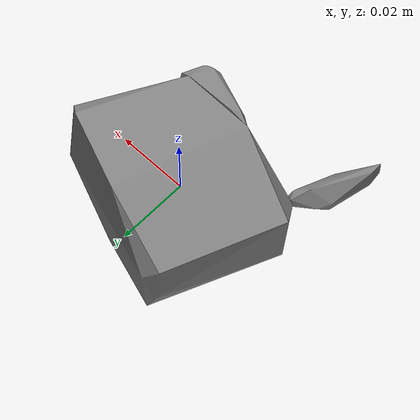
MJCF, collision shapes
<mujoco model="padlock">
  <compiler angle="radian" />

  <asset>
    <mesh name="padlock_visual_mesh" file="padlock/textured.obj" />
    <mesh name="padlock_collision_mesh_0" file="padlock/textured_coacd_0.stl" />
    <mesh name="padlock_collision_mesh_1" file="padlock/textured_coacd_1.stl" />
    <mesh name="padlock_collision_mesh_2" file="padlock/textured_coacd_2.stl" />
    <mesh name="padlock_collision_mesh_3" file="padlock/textured_coacd_3.stl" />
    <texture name="padlock_texture" type="2d" file="padlock/texture_map.png" />
    <material name="padlock_material" texture="padlock_texture" />
  </asset>

  <worldbody>
    <body name="padlock" pos="0 0 0" euler="0 0 0">
      <freejoint name="padlock_joint" />
      <geom name="padlock_visual_geom" type="mesh" mesh="padlock_visual_mesh" material="padlock_material" pos="0.01707606691752894 -0.00951738900221132 -0.013626341524550546" euler="0 0 0" contype="0" conaffinity="0" group="0" />
      <geom name="padlock_collision_geom_0" type="mesh" mesh="padlock_collision_mesh_0" pos="0.01707606691752894 -0.00951738900221132 -0.013626341524550546" euler="0 0 0" contype="1" conaffinity="1" group="3" />
      <geom name="padlock_collision_geom_1" type="mesh" mesh="padlock_collision_mesh_1" pos="0.01707606691752894 -0.00951738900221132 -0.013626341524550546" euler="0 0 0" contype="1" conaffinity="1" group="3" />
      <geom name="padlock_collision_geom_2" type="mesh" mesh="padlock_collision_mesh_2" pos="0.01707606691752894 -0.00951738900221132 -0.013626341524550546" euler="0 0 0" contype="1" conaffinity="1" group="3" />
      <geom name="padlock_collision_geom_3" type="mesh" mesh="padlock_collision_mesh_3" pos="0.01707606691752894 -0.00951738900221132 -0.013626341524550546" euler="0 0 0" contype="1" conaffinity="1" group="3" />
      <inertial pos="0 0 0" euler="0 0 0" mass="0.208" diaginertia="0.001 0.001 0.001" />
    </body>
  </worldbody>
</mujoco>
